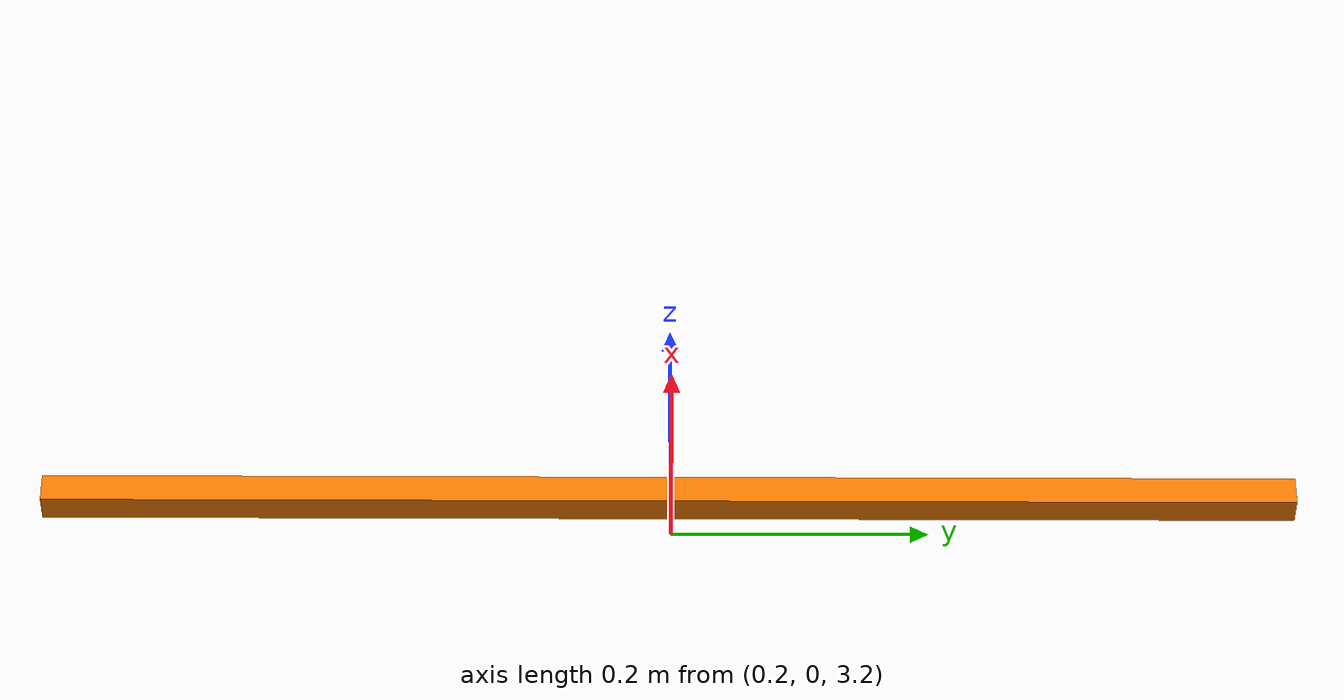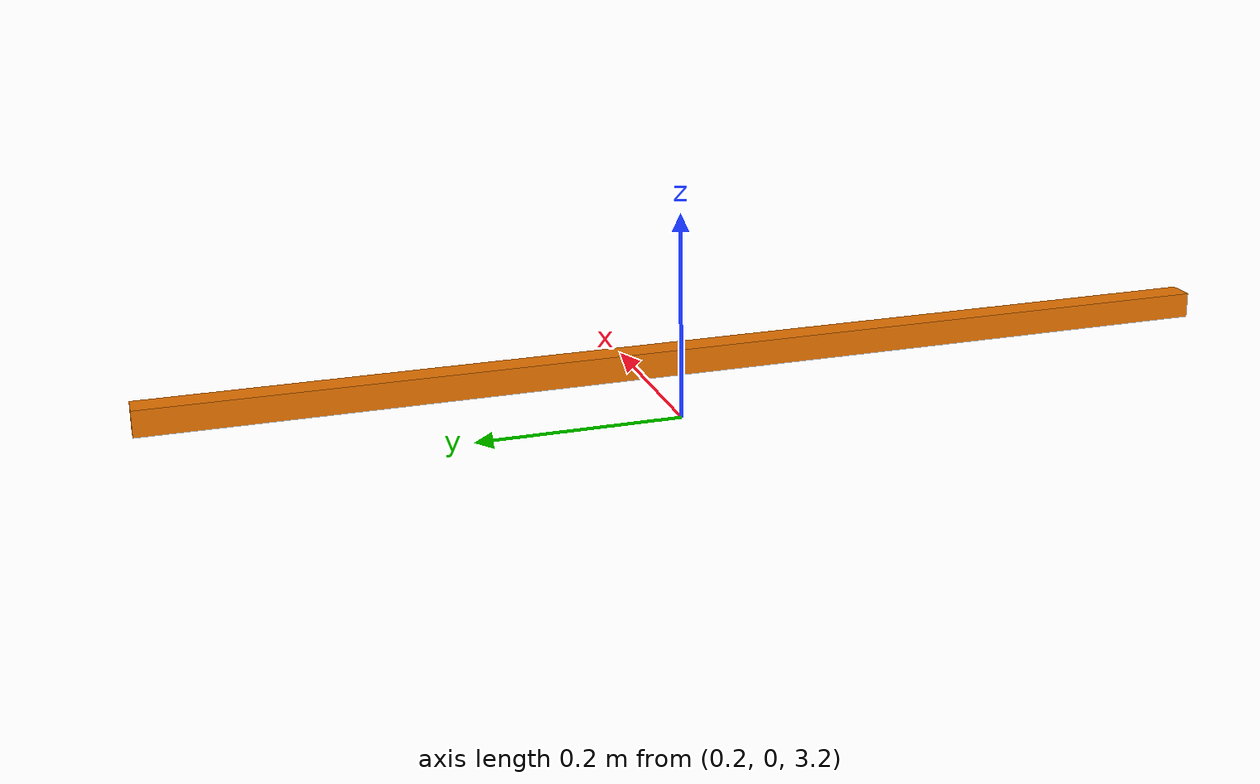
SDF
<?xml version="1.0" ?>
<sdf version="1.5">
  <model name="top_gate">
    <static>true</static>
    <link name='link'>
      <collision name="collision">
        <geometry>
          <mesh>
            <uri>model://top_gate/meshes/top_gate.dae</uri>
            <scale>1 1 1</scale>
          </mesh>
        </geometry>
        <surface>
          <contact>
            <collide_bitmask>0xffff</collide_bitmask>
          </contact>
          <friction>
            <ode>
              <mu>100</mu>
              <mu2>50</mu2>
            </ode>
          </friction>
        </surface>
      </collision>
      <visual name='visual'>
        <geometry>
          <mesh>
            <uri>model://top_gate/meshes/top_gate.dae</uri>
            <scale>1 1 1</scale>
          </mesh>
        </geometry>
      </visual>
    </link>
  </model>
</sdf>
